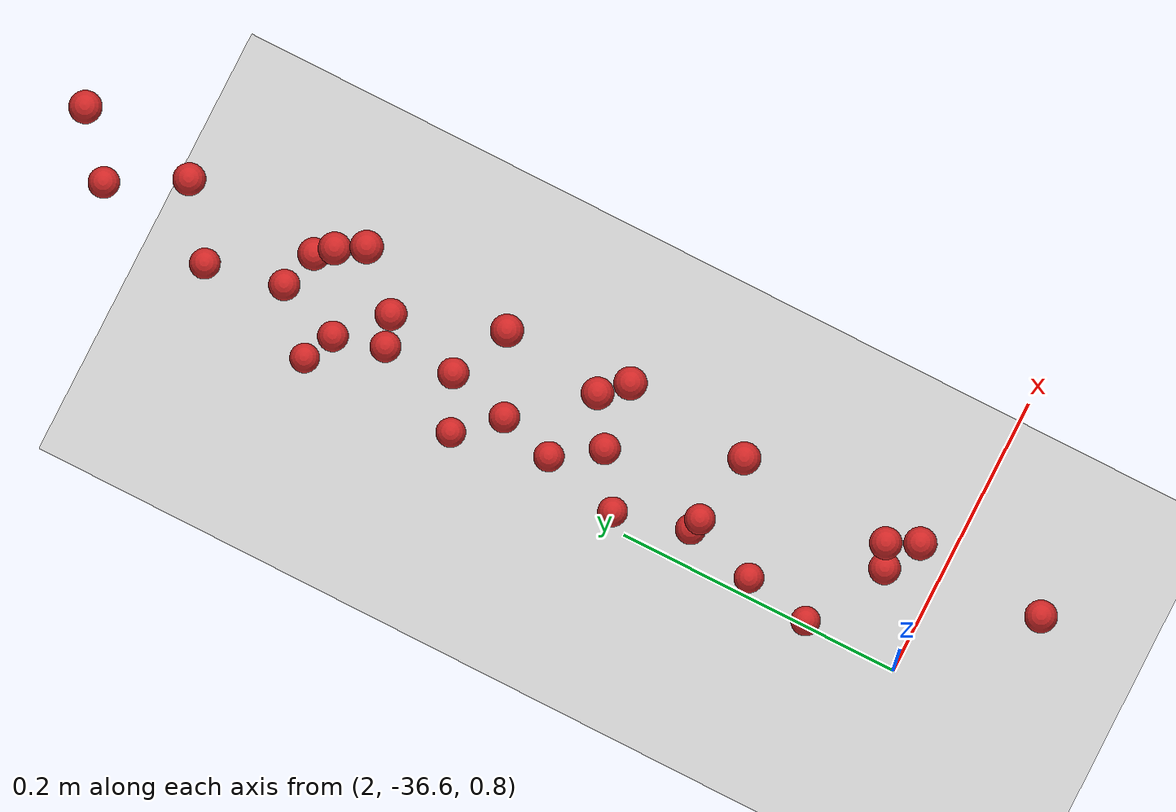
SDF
<sdf version="1.4">
 <world name="default">
  <model name="ground_plane">
   <static>1</static>
   <link name="link">
    <collision name="collision">
     <geometry><plane><normal>0 0 1</normal><size>100 100</size></plane></geometry>
     <surface><friction><ode><mu>100</mu><mu2>50</mu2></ode></friction></surface>
    </collision>
    <visual name="visual">
     <cast_shadows>0</cast_shadows>
     <geometry><plane><normal>0 0 1</normal><size>100 100</size></plane></geometry>
     <material>
      <script><uri>file://media/materials/scripts/gazebo.material</uri><name>Gazebo/Grey</name></script>
     </material>
    </visual>
    <velocity_decay><linear>0</linear><angular>0</angular></velocity_decay>
   </link>
  </model>
  <model name="apple202">
   <link name="my_apple">
    <inertial>
     <pose>2 0 0 0 -0 0</pose>
     <mass>1</mass>
     <inertia><ixx>1</ixx><ixy>0</ixy><ixz>0</ixz><iyy>1</iyy><iyz>0</iyz><izz>1</izz></inertia>
    </inertial>
    <collision name="my_apple_collision">
     <pose>2 0 1 0 -0 0</pose>
     <geometry><sphere><radius>0.01</radius></sphere></geometry>
    </collision>
    <visual name="my_apple_visual">
     <pose>2 0 1 0 -0 0</pose>
     <geometry><sphere><radius>0.01</radius></sphere></geometry>
     <material><script><name>Gazebo/Red</name><uri>__default__</uri></script></material>
    </visual>
    <gravity>0</gravity>
    <velocity_decay><linear>0</linear><angular>0</angular></velocity_decay>
   </link>
   <pose>0 -36.5754 0.503998 0 -0 0</pose>
   <static>0</static>
  </model>
  <model name="apple203">
   <link name="my_apple">
    <inertial>
     <pose>2 0 0 0 -0 0</pose>
     <mass>1</mass>
     <inertia><ixx>1</ixx><ixy>0</ixy><ixz>0</ixz><iyy>1</iyy><iyz>0</iyz><izz>1</izz></inertia>
    </inertial>
    <collision name="my_apple_collision">
     <pose>2 0 1 0 -0 0</pose>
     <geometry><sphere><radius>0.01</radius></sphere></geometry>
    </collision>
    <visual name="my_apple_visual">
     <pose>2 0 1 0 -0 0</pose>
     <geometry><sphere><radius>0.01</radius></sphere></geometry>
     <material><script><name>Gazebo/Red</name><uri>__default__</uri></script></material>
    </visual>
    <gravity>0</gravity>
    <velocity_decay><linear>0</linear><angular>0</angular></velocity_decay>
   </link>
   <pose>0 -36.5719 0.671842 0 -0 0</pose>
   <static>0</static>
  </model>
  <model name="apple204">
   <link name="my_apple">
    <inertial>
     <pose>2 0 0 0 -0 0</pose>
     <mass>1</mass>
     <inertia><ixx>1</ixx><ixy>0</ixy><ixz>0</ixz><iyy>1</iyy><iyz>0</iyz><izz>1</izz></inertia>
    </inertial>
    <collision name="my_apple_collision">
     <pose>2 0 1 0 -0 0</pose>
     <geometry><sphere><radius>0.01</radius></sphere></geometry>
    </collision>
    <visual name="my_apple_visual">
     <pose>2 0 1 0 -0 0</pose>
     <geometry><sphere><radius>0.01</radius></sphere></geometry>
     <material><script><name>Gazebo/Red</name><uri>__default__</uri></script></material>
    </visual>
    <gravity>0</gravity>
    <velocity_decay><linear>0</linear><angular>0</angular></velocity_decay>
   </link>
   <pose>0 -36.4761 0.754013 0 -0 0</pose>
   <static>0</static>
  </model>
  <model name="apple207">
   <link name="my_apple">
    <inertial>
     <pose>2 0 0 0 -0 0</pose>
     <mass>1</mass>
     <inertia><ixx>1</ixx><ixy>0</ixy><ixz>0</ixz><iyy>1</iyy><iyz>0</iyz><izz>1</izz></inertia>
    </inertial>
    <collision name="my_apple_collision">
     <pose>2 0 1 0 -0 0</pose>
     <geometry><sphere><radius>0.01</radius></sphere></geometry>
    </collision>
    <visual name="my_apple_visual">
     <pose>2 0 1 0 -0 0</pose>
     <geometry><sphere><radius>0.01</radius></sphere></geometry>
     <material><script><name>Gazebo/Red</name><uri>__default__</uri></script></material>
    </visual>
    <gravity>0</gravity>
    <velocity_decay><linear>0</linear><angular>0</angular></velocity_decay>
   </link>
   <pose>0 -36.4903 -0.044987 0 -0 0</pose>
   <static>0</static>
  </model>
  <model name="apple209">
   <link name="my_apple">
    <inertial>
     <pose>2 0 0 0 -0 0</pose>
     <mass>1</mass>
     <inertia><ixx>1</ixx><ixy>0</ixy><ixz>0</ixz><iyy>1</iyy><iyz>0</iyz><izz>1</izz></inertia>
    </inertial>
    <collision name="my_apple_collision">
     <pose>2 0 1 0 -0 0</pose>
     <geometry><sphere><radius>0.01</radius></sphere></geometry>
    </collision>
    <visual name="my_apple_visual">
     <pose>2 0 1 0 -0 0</pose>
     <geometry><sphere><radius>0.01</radius></sphere></geometry>
     <material><script><name>Gazebo/Red</name><uri>__default__</uri></script></material>
    </visual>
    <gravity>0</gravity>
    <velocity_decay><linear>0</linear><angular>0</angular></velocity_decay>
   </link>
   <pose>0 -36.4521 0.202278 0 -0 0</pose>
   <static>0</static>
  </model>
  <model name="apple211">
   <link name="my_apple">
    <inertial>
     <pose>2 0 0 0 -0 0</pose>
     <mass>1</mass>
     <inertia><ixx>1</ixx><ixy>0</ixy><ixz>0</ixz><iyy>1</iyy><iyz>0</iyz><izz>1</izz></inertia>
    </inertial>
    <collision name="my_apple_collision">
     <pose>2 0 1 0 -0 0</pose>
     <geometry><sphere><radius>0.01</radius></sphere></geometry>
    </collision>
    <visual name="my_apple_visual">
     <pose>2 0 1 0 -0 0</pose>
     <geometry><sphere><radius>0.01</radius></sphere></geometry>
     <material><script><name>Gazebo/Red</name><uri>__default__</uri></script></material>
    </visual>
    <gravity>0</gravity>
    <velocity_decay><linear>0</linear><angular>0</angular></velocity_decay>
   </link>
   <pose>0 -36.3906 -0.066087 0 -0 0</pose>
   <static>0</static>
  </model>
  <model name="apple213">
   <link name="my_apple">
    <inertial>
     <pose>2 0 0 0 -0 0</pose>
     <mass>1</mass>
     <inertia><ixx>1</ixx><ixy>0</ixy><ixz>0</ixz><iyy>1</iyy><iyz>0</iyz><izz>1</izz></inertia>
    </inertial>
    <collision name="my_apple_collision">
     <pose>2 0 1 0 -0 0</pose>
     <geometry><sphere><radius>0.01</radius></sphere></geometry>
    </collision>
    <visual name="my_apple_visual">
     <pose>2 0 1 0 -0 0</pose>
     <geometry><sphere><radius>0.01</radius></sphere></geometry>
     <material><script><name>Gazebo/Red</name><uri>__default__</uri></script></material>
    </visual>
    <gravity>0</gravity>
    <velocity_decay><linear>0</linear><angular>0</angular></velocity_decay>
   </link>
   <pose>0 -36.3842 0.357136 0 -0 0</pose>
   <static>0</static>
  </model>
  <model name="apple214">
   <link name="my_apple">
    <inertial>
     <pose>2 0 0 0 -0 0</pose>
     <mass>1</mass>
     <inertia><ixx>1</ixx><ixy>0</ixy><ixz>0</ixz><iyy>1</iyy><iyz>0</iyz><izz>1</izz></inertia>
    </inertial>
    <collision name="my_apple_collision">
     <pose>2 0 1 0 -0 0</pose>
     <geometry><sphere><radius>0.01</radius></sphere></geometry>
    </collision>
    <visual name="my_apple_visual">
     <pose>2 0 1 0 -0 0</pose>
     <geometry><sphere><radius>0.01</radius></sphere></geometry>
     <material><script><name>Gazebo/Red</name><uri>__default__</uri></script></material>
    </visual>
    <gravity>0</gravity>
    <velocity_decay><linear>0</linear><angular>0</angular></velocity_decay>
   </link>
   <pose>0 -36.379 0.698067 0 -0 0</pose>
   <static>0</static>
  </model>
  <model name="apple216">
   <link name="my_apple">
    <inertial>
     <pose>2 0 0 0 -0 0</pose>
     <mass>1</mass>
     <inertia><ixx>1</ixx><ixy>0</ixy><ixz>0</ixz><iyy>1</iyy><iyz>0</iyz><izz>1</izz></inertia>
    </inertial>
    <collision name="my_apple_collision">
     <pose>2 0 1 0 -0 0</pose>
     <geometry><sphere><radius>0.01</radius></sphere></geometry>
    </collision>
    <visual name="my_apple_visual">
     <pose>2 0 1 0 -0 0</pose>
     <geometry><sphere><radius>0.01</radius></sphere></geometry>
     <material><script><name>Gazebo/Red</name><uri>__default__</uri></script></material>
    </visual>
    <gravity>0</gravity>
    <velocity_decay><linear>0</linear><angular>0</angular></velocity_decay>
   </link>
   <pose>0 -36.4464 0.096631 0 -0 0</pose>
   <static>0</static>
  </model>
  <model name="apple217">
   <link name="my_apple">
    <inertial>
     <pose>2 0 0 0 -0 0</pose>
     <mass>1</mass>
     <inertia><ixx>1</ixx><ixy>0</ixy><ixz>0</ixz><iyy>1</iyy><iyz>0</iyz><izz>1</izz></inertia>
    </inertial>
    <collision name="my_apple_collision">
     <pose>2 0 1 0 -0 0</pose>
     <geometry><sphere><radius>0.01</radius></sphere></geometry>
    </collision>
    <visual name="my_apple_visual">
     <pose>2 0 1 0 -0 0</pose>
     <geometry><sphere><radius>0.01</radius></sphere></geometry>
     <material><script><name>Gazebo/Red</name><uri>__default__</uri></script></material>
    </visual>
    <gravity>0</gravity>
    <velocity_decay><linear>0</linear><angular>0</angular></velocity_decay>
   </link>
   <pose>0 -36.238 0.533476 0 -0 0</pose>
   <static>0</static>
  </model>
  <model name="apple218">
   <link name="my_apple">
    <inertial>
     <pose>2 0 0 0 -0 0</pose>
     <mass>1</mass>
     <inertia><ixx>1</ixx><ixy>0</ixy><ixz>0</ixz><iyy>1</iyy><iyz>0</iyz><izz>1</izz></inertia>
    </inertial>
    <collision name="my_apple_collision">
     <pose>2 0 1 0 -0 0</pose>
     <geometry><sphere><radius>0.01</radius></sphere></geometry>
    </collision>
    <visual name="my_apple_visual">
     <pose>2 0 1 0 -0 0</pose>
     <geometry><sphere><radius>0.01</radius></sphere></geometry>
     <material><script><name>Gazebo/Red</name><uri>__default__</uri></script></material>
    </visual>
    <gravity>0</gravity>
    <velocity_decay><linear>0</linear><angular>0</angular></velocity_decay>
   </link>
   <pose>0 -36.2785 0.350831 0 -0 0</pose>
   <static>0</static>
  </model>
  <model name="apple219">
   <link name="my_apple">
    <inertial>
     <pose>2 0 0 0 -0 0</pose>
     <mass>1</mass>
     <inertia><ixx>1</ixx><ixy>0</ixy><ixz>0</ixz><iyy>1</iyy><iyz>0</iyz><izz>1</izz></inertia>
    </inertial>
    <collision name="my_apple_collision">
     <pose>2 0 1 0 -0 0</pose>
     <geometry><sphere><radius>0.01</radius></sphere></geometry>
    </collision>
    <visual name="my_apple_visual">
     <pose>2 0 1 0 -0 0</pose>
     <geometry><sphere><radius>0.01</radius></sphere></geometry>
     <material><script><name>Gazebo/Red</name><uri>__default__</uri></script></material>
    </visual>
    <gravity>0</gravity>
    <velocity_decay><linear>0</linear><angular>0</angular></velocity_decay>
   </link>
   <pose>0 -36.2302 0.297416 0 -0 0</pose>
   <static>0</static>
  </model>
  <model name="apple221">
   <link name="my_apple">
    <inertial>
     <pose>2 0 0 0 -0 0</pose>
     <mass>1</mass>
     <inertia><ixx>1</ixx><ixy>0</ixy><ixz>0</ixz><iyy>1</iyy><iyz>0</iyz><izz>1</izz></inertia>
    </inertial>
    <collision name="my_apple_collision">
     <pose>2 0 1 0 -0 0</pose>
     <geometry><sphere><radius>0.01</radius></sphere></geometry>
    </collision>
    <visual name="my_apple_visual">
     <pose>2 0 1 0 -0 0</pose>
     <geometry><sphere><radius>0.01</radius></sphere></geometry>
     <material><script><name>Gazebo/Red</name><uri>__default__</uri></script></material>
    </visual>
    <gravity>0</gravity>
    <velocity_decay><linear>0</linear><angular>0</angular></velocity_decay>
   </link>
   <pose>0 -36.1888 0.673044 0 -0 0</pose>
   <static>0</static>
  </model>
  <model name="apple222">
   <link name="my_apple">
    <inertial>
     <pose>2 0 0 0 -0 0</pose>
     <mass>1</mass>
     <inertia><ixx>1</ixx><ixy>0</ixy><ixz>0</ixz><iyy>1</iyy><iyz>0</iyz><izz>1</izz></inertia>
    </inertial>
    <collision name="my_apple_collision">
     <pose>2 0 1 0 -0 0</pose>
     <geometry><sphere><radius>0.01</radius></sphere></geometry>
    </collision>
    <visual name="my_apple_visual">
     <pose>2 0 1 0 -0 0</pose>
     <geometry><sphere><radius>0.01</radius></sphere></geometry>
     <material><script><name>Gazebo/Red</name><uri>__default__</uri></script></material>
    </visual>
    <gravity>0</gravity>
    <velocity_decay><linear>0</linear><angular>0</angular></velocity_decay>
   </link>
   <pose>0 -36.161 0.371123 0 -0 0</pose>
   <static>0</static>
  </model>
  <model name="apple223">
   <link name="my_apple">
    <inertial>
     <pose>2 0 0 0 -0 0</pose>
     <mass>1</mass>
     <inertia><ixx>1</ixx><ixy>0</ixy><ixz>0</ixz><iyy>1</iyy><iyz>0</iyz><izz>1</izz></inertia>
    </inertial>
    <collision name="my_apple_collision">
     <pose>2 0 1 0 -0 0</pose>
     <geometry><sphere><radius>0.01</radius></sphere></geometry>
    </collision>
    <visual name="my_apple_visual">
     <pose>2 0 1 0 -0 0</pose>
     <geometry><sphere><radius>0.01</radius></sphere></geometry>
     <material><script><name>Gazebo/Red</name><uri>__default__</uri></script></material>
    </visual>
    <gravity>0</gravity>
    <velocity_decay><linear>0</linear><angular>0</angular></velocity_decay>
   </link>
   <pose>0 -36.164 -0.081736 0 -0 0</pose>
   <static>0</static>
  </model>
  <model name="apple224">
   <link name="my_apple">
    <inertial>
     <pose>2 0 0 0 -0 0</pose>
     <mass>1</mass>
     <inertia><ixx>1</ixx><ixy>0</ixy><ixz>0</ixz><iyy>1</iyy><iyz>0</iyz><izz>1</izz></inertia>
    </inertial>
    <collision name="my_apple_collision">
     <pose>2 0 1 0 -0 0</pose>
     <geometry><sphere><radius>0.01</radius></sphere></geometry>
    </collision>
    <visual name="my_apple_visual">
     <pose>2 0 1 0 -0 0</pose>
     <geometry><sphere><radius>0.01</radius></sphere></geometry>
     <material><script><name>Gazebo/Red</name><uri>__default__</uri></script></material>
    </visual>
    <gravity>0</gravity>
    <velocity_decay><linear>0</linear><angular>0</angular></velocity_decay>
   </link>
   <pose>0 -36.592 0.778337 0 -0 0</pose>
   <static>0</static>
  </model>
  <model name="apple225">
   <link name="my_apple">
    <inertial>
     <pose>2 0 0 0 -0 0</pose>
     <mass>1</mass>
     <inertia><ixx>1</ixx><ixy>0</ixy><ixz>0</ixz><iyy>1</iyy><iyz>0</iyz><izz>1</izz></inertia>
    </inertial>
    <collision name="my_apple_collision">
     <pose>2 0 1 0 -0 0</pose>
     <geometry><sphere><radius>0.01</radius></sphere></geometry>
    </collision>
    <visual name="my_apple_visual">
     <pose>2 0 1 0 -0 0</pose>
     <geometry><sphere><radius>0.01</radius></sphere></geometry>
     <material><script><name>Gazebo/Red</name><uri>__default__</uri></script></material>
    </visual>
    <gravity>0</gravity>
    <velocity_decay><linear>0</linear><angular>0</angular></velocity_decay>
   </link>
   <pose>0 -36.1012 0.240636 0 -0 0</pose>
   <static>0</static>
  </model>
  <model name="apple226">
   <link name="my_apple">
    <inertial>
     <pose>2 0 0 0 -0 0</pose>
     <mass>1</mass>
     <inertia><ixx>1</ixx><ixy>0</ixy><ixz>0</ixz><iyy>1</iyy><iyz>0</iyz><izz>1</izz></inertia>
    </inertial>
    <collision name="my_apple_collision">
     <pose>2 0 1 0 -0 0</pose>
     <geometry><sphere><radius>0.01</radius></sphere></geometry>
    </collision>
    <visual name="my_apple_visual">
     <pose>2 0 1 0 -0 0</pose>
     <geometry><sphere><radius>0.01</radius></sphere></geometry>
     <material><script><name>Gazebo/Red</name><uri>__default__</uri></script></material>
    </visual>
    <gravity>0</gravity>
    <velocity_decay><linear>0</linear><angular>0</angular></velocity_decay>
   </link>
   <pose>0 -36.1075 0.745912 0 -0 0</pose>
   <static>0</static>
  </model>
  <model name="apple227">
   <link name="my_apple">
    <inertial>
     <pose>2 0 0 0 -0 0</pose>
     <mass>1</mass>
     <inertia><ixx>1</ixx><ixy>0</ixy><ixz>0</ixz><iyy>1</iyy><iyz>0</iyz><izz>1</izz></inertia>
    </inertial>
    <collision name="my_apple_collision">
     <pose>2 0 1 0 -0 0</pose>
     <geometry><sphere><radius>0.01</radius></sphere></geometry>
    </collision>
    <visual name="my_apple_visual">
     <pose>2 0 1 0 -0 0</pose>
     <geometry><sphere><radius>0.01</radius></sphere></geometry>
     <material><script><name>Gazebo/Red</name><uri>__default__</uri></script></material>
    </visual>
    <gravity>0</gravity>
    <velocity_decay><linear>0</linear><angular>0</angular></velocity_decay>
   </link>
   <pose>0 -36.2716 -0.085521 0 -0 0</pose>
   <static>0</static>
  </model>
  <model name="apple228">
   <link name="my_apple">
    <inertial>
     <pose>2 0 0 0 -0 0</pose>
     <mass>1</mass>
     <inertia><ixx>1</ixx><ixy>0</ixy><ixz>0</ixz><iyy>1</iyy><iyz>0</iyz><izz>1</izz></inertia>
    </inertial>
    <collision name="my_apple_collision">
     <pose>2 0 1 0 -0 0</pose>
     <geometry><sphere><radius>0.01</radius></sphere></geometry>
    </collision>
    <visual name="my_apple_visual">
     <pose>2 0 1 0 -0 0</pose>
     <geometry><sphere><radius>0.01</radius></sphere></geometry>
     <material><script><name>Gazebo/Red</name><uri>__default__</uri></script></material>
    </visual>
    <gravity>0</gravity>
    <velocity_decay><linear>0</linear><angular>0</angular></velocity_decay>
   </link>
   <pose>0 -36.0381 0.446748 0 -0 0</pose>
   <static>0</static>
  </model>
  <model name="apple229">
   <link name="my_apple">
    <inertial>
     <pose>2 0 0 0 -0 0</pose>
     <mass>1</mass>
     <inertia><ixx>1</ixx><ixy>0</ixy><ixz>0</ixz><iyy>1</iyy><iyz>0</iyz><izz>1</izz></inertia>
    </inertial>
    <collision name="my_apple_collision">
     <pose>2 0 1 0 -0 0</pose>
     <geometry><sphere><radius>0.01</radius></sphere></geometry>
    </collision>
    <visual name="my_apple_visual">
     <pose>2 0 1 0 -0 0</pose>
     <geometry><sphere><radius>0.01</radius></sphere></geometry>
     <material><script><name>Gazebo/Red</name><uri>__default__</uri></script></material>
    </visual>
    <gravity>0</gravity>
    <velocity_decay><linear>0</linear><angular>0</angular></velocity_decay>
   </link>
   <pose>0 -36.3192 0.802094 0 -0 0</pose>
   <static>0</static>
  </model>
  <model name="apple231">
   <link name="my_apple">
    <inertial>
     <pose>2 0 0 0 -0 0</pose>
     <mass>1</mass>
     <inertia><ixx>1</ixx><ixy>0</ixy><ixz>0</ixz><iyy>1</iyy><iyz>0</iyz><izz>1</izz></inertia>
    </inertial>
    <collision name="my_apple_collision">
     <pose>2 0 1 0 -0 0</pose>
     <geometry><sphere><radius>0.01</radius></sphere></geometry>
    </collision>
    <visual name="my_apple_visual">
     <pose>2 0 1 0 -0 0</pose>
     <geometry><sphere><radius>0.01</radius></sphere></geometry>
     <material><script><name>Gazebo/Red</name><uri>__default__</uri></script></material>
    </visual>
    <gravity>0</gravity>
    <velocity_decay><linear>0</linear><angular>0</angular></velocity_decay>
   </link>
   <pose>0 -36.6744 0.703374 0 -0 0</pose>
   <static>0</static>
  </model>
  <model name="apple234">
   <link name="my_apple">
    <inertial>
     <pose>2 0 0 0 -0 0</pose>
     <mass>1</mass>
     <inertia><ixx>1</ixx><ixy>0</ixy><ixz>0</ixz><iyy>1</iyy><iyz>0</iyz><izz>1</izz></inertia>
    </inertial>
    <collision name="my_apple_collision">
     <pose>2 0 1 0 -0 0</pose>
     <geometry><sphere><radius>0.01</radius></sphere></geometry>
    </collision>
    <visual name="my_apple_visual">
     <pose>2 0 1 0 -0 0</pose>
     <geometry><sphere><radius>0.01</radius></sphere></geometry>
     <material><script><name>Gazebo/Red</name><uri>__default__</uri></script></material>
    </visual>
    <gravity>0</gravity>
    <velocity_decay><linear>0</linear><angular>0</angular></velocity_decay>
   </link>
   <pose>0 -36.3132 0.222594 0 -0 0</pose>
   <static>0</static>
  </model>
  <model name="apple235">
   <link name="my_apple">
    <inertial>
     <pose>2 0 0 0 -0 0</pose>
     <mass>1</mass>
     <inertia><ixx>1</ixx><ixy>0</ixy><ixz>0</ixz><iyy>1</iyy><iyz>0</iyz><izz>1</izz></inertia>
    </inertial>
    <collision name="my_apple_collision">
     <pose>2 0 1 0 -0 0</pose>
     <geometry><sphere><radius>0.01</radius></sphere></geometry>
    </collision>
    <visual name="my_apple_visual">
     <pose>2 0 1 0 -0 0</pose>
     <geometry><sphere><radius>0.01</radius></sphere></geometry>
     <material><script><name>Gazebo/Red</name><uri>__default__</uri></script></material>
    </visual>
    <gravity>0</gravity>
    <velocity_decay><linear>0</linear><angular>0</angular></velocity_decay>
   </link>
   <pose>0 -36.5337 -0.155036 0 -0 0</pose>
   <static>0</static>
  </model>
  <model name="apple236">
   <link name="my_apple">
    <inertial>
     <pose>2 0 0 0 -0 0</pose>
     <mass>1</mass>
     <inertia><ixx>1</ixx><ixy>0</ixy><ixz>0</ixz><iyy>1</iyy><iyz>0</iyz><izz>1</izz></inertia>
    </inertial>
    <collision name="my_apple_collision">
     <pose>2 0 1 0 -0 0</pose>
     <geometry><sphere><radius>0.01</radius></sphere></geometry>
    </collision>
    <visual name="my_apple_visual">
     <pose>2 0 1 0 -0 0</pose>
     <geometry><sphere><radius>0.01</radius></sphere></geometry>
     <material><script><name>Gazebo/Red</name><uri>__default__</uri></script></material>
    </visual>
    <gravity>0</gravity>
    <velocity_decay><linear>0</linear><angular>0</angular></velocity_decay>
   </link>
   <pose>0 -36.3444 0.103772 0 -0 0</pose>
   <static>0</static>
  </model>
  <model name="apple240">
   <link name="my_apple">
    <inertial>
     <pose>2 0 0 0 -0 0</pose>
     <mass>1</mass>
     <inertia><ixx>1</ixx><ixy>0</ixy><ixz>0</ixz><iyy>1</iyy><iyz>0</iyz><izz>1</izz></inertia>
    </inertial>
    <collision name="my_apple_collision">
     <pose>2 0 1 0 -0 0</pose>
     <geometry><sphere><radius>0.01</radius></sphere></geometry>
    </collision>
    <visual name="my_apple_visual">
     <pose>2 0 1 0 -0 0</pose>
     <geometry><sphere><radius>0.01</radius></sphere></geometry>
     <material><script><name>Gazebo/Red</name><uri>__default__</uri></script></material>
    </visual>
    <gravity>0</gravity>
    <velocity_decay><linear>0</linear><angular>0</angular></velocity_decay>
   </link>
   <pose>0 -36.1907 0.184006 0 -0 0</pose>
   <static>0</static>
  </model>
  <model name="apple248">
   <link name="my_apple">
    <inertial>
     <pose>2 0 0 0 -0 0</pose>
     <mass>1</mass>
     <inertia><ixx>1</ixx><ixy>0</ixy><ixz>0</ixz><iyy>1</iyy><iyz>0</iyz><izz>1</izz></inertia>
    </inertial>
    <collision name="my_apple_collision">
     <pose>2 0 1 0 -0 0</pose>
     <geometry><sphere><radius>0.01</radius></sphere></geometry>
    </collision>
    <visual name="my_apple_visual">
     <pose>2 0 1 0 -0 0</pose>
     <geometry><sphere><radius>0.01</radius></sphere></geometry>
     <material><script><name>Gazebo/Red</name><uri>__default__</uri></script></material>
    </visual>
    <gravity>0</gravity>
    <velocity_decay><linear>0</linear><angular>0</angular></velocity_decay>
   </link>
   <pose>0 -36.4003 0.860899 0 -0 0</pose>
   <static>0</static>
  </model>
  <model name="apple259">
   <link name="my_apple">
    <inertial>
     <pose>2 0 0 0 -0 0</pose>
     <mass>1</mass>
     <inertia><ixx>1</ixx><ixy>0</ixy><ixz>0</ixz><iyy>1</iyy><iyz>0</iyz><izz>1</izz></inertia>
    </inertial>
    <collision name="my_apple_collision">
     <pose>2 0 1 0 -0 0</pose>
     <geometry><sphere><radius>0.01</radius></sphere></geometry>
    </collision>
    <visual name="my_apple_visual">
     <pose>2 0 1 0 -0 0</pose>
     <geometry><sphere><radius>0.01</radius></sphere></geometry>
     <material><script><name>Gazebo/Red</name><uri>__default__</uri></script></material>
    </visual>
    <gravity>0</gravity>
    <velocity_decay><linear>0</linear><angular>0</angular></velocity_decay>
   </link>
   <pose>0 -36.2049 0.77232 0 -0 0</pose>
   <static>0</static>
  </model>
  <model name="apple274">
   <link name="my_apple">
    <inertial>
     <pose>2 0 0 0 -0 0</pose>
     <mass>1</mass>
     <inertia><ixx>1</ixx><ixy>0</ixy><ixz>0</ixz><iyy>1</iyy><iyz>0</iyz><izz>1</izz></inertia>
    </inertial>
    <collision name="my_apple_collision">
     <pose>2 0 1 0 -0 0</pose>
     <geometry><sphere><radius>0.01</radius></sphere></geometry>
    </collision>
    <visual name="my_apple_visual">
     <pose>2 0 1 0 -0 0</pose>
     <geometry><sphere><radius>0.01</radius></sphere></geometry>
     <material><script><name>Gazebo/Red</name><uri>__default__</uri></script></material>
    </visual>
    <gravity>0</gravity>
    <velocity_decay><linear>0</linear><angular>0</angular></velocity_decay>
   </link>
   <pose>0 -36.0436 0.866575 0 -0 0</pose>
   <static>0</static>
  </model>
  <model name="apple278">
   <link name="my_apple">
    <inertial>
     <pose>2 0 0 0 -0 0</pose>
     <mass>1</mass>
     <inertia><ixx>1</ixx><ixy>0</ixy><ixz>0</ixz><iyy>1</iyy><iyz>0</iyz><izz>1</izz></inertia>
    </inertial>
    <collision name="my_apple_collision">
     <pose>2 0 1 0 -0 0</pose>
     <geometry><sphere><radius>0.01</radius></sphere></geometry>
    </collision>
    <visual name="my_apple_visual">
     <pose>2 0 1 0 -0 0</pose>
     <geometry><sphere><radius>0.01</radius></sphere></geometry>
     <material><script><name>Gazebo/Red</name><uri>__default__</uri></script></material>
    </visual>
    <gravity>0</gravity>
    <velocity_decay><linear>0</linear><angular>0</angular></velocity_decay>
   </link>
   <pose>0 -36.2281 0.879341 0 -0 0</pose>
   <static>0</static>
  </model>
 </world>
</sdf>
